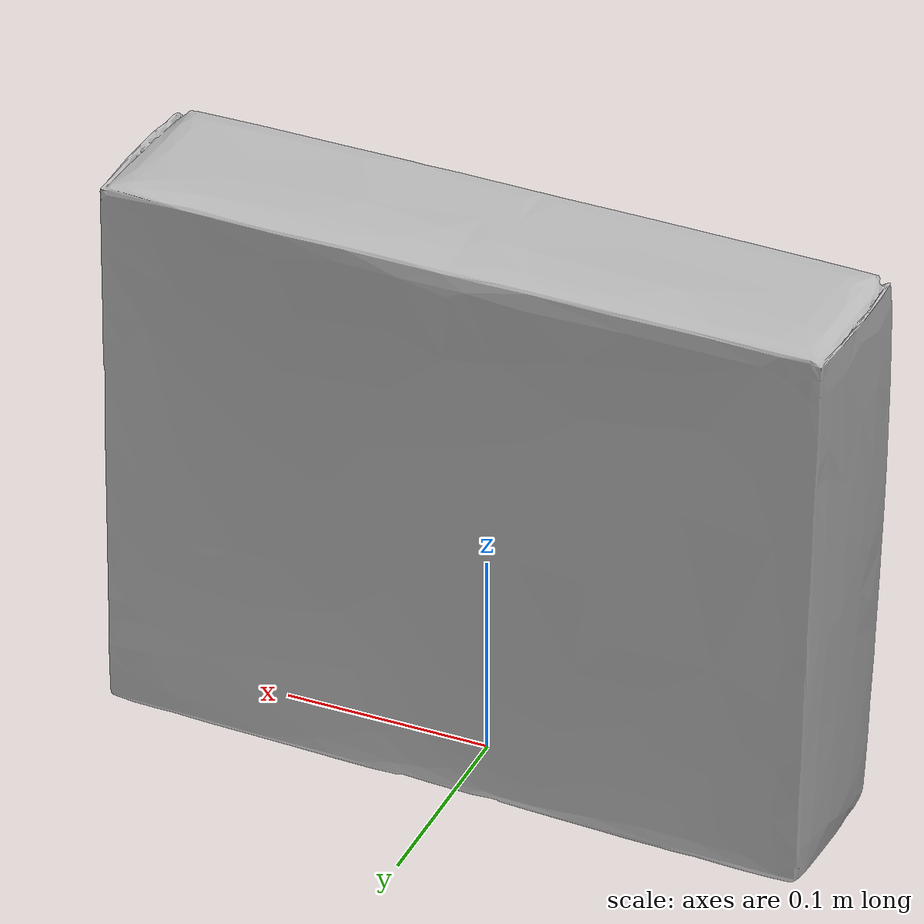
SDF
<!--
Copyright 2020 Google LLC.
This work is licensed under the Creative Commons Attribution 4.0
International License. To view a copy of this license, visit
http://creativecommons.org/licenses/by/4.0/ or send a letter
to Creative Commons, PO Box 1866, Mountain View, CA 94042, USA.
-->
<?xml version="1.0" ?>
<sdf version="1.6">
  <model name="Asus_Sabertooth_Z97_MARK_1_Motherboard_ATX_LGA1150_Socket">
    <link name="link_0">
      <visual name="visual">
        <geometry>
          <mesh>
            <uri>meshes/model.obj</uri>
          </mesh>
        </geometry>
      </visual>
      <collision name="collision_0">
        <geometry>
          <mesh>
            <uri>meshes/model.obj</uri>
          </mesh>
        </geometry>
      </collision>
    </link>
  </model>
</sdf>
